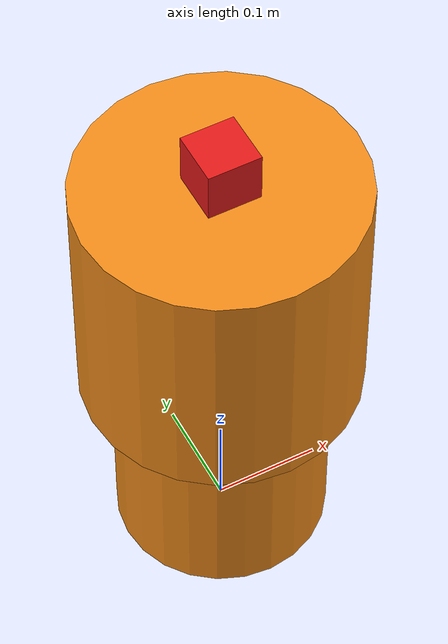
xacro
<?xml version="1.0"?>
<!-- Lander -->
<robot name="lander" xmlns:xacro="http://www.ros.org/wiki/xacro">

  <!-- Constants for robot dimensions -->
  <xacro:property name="PI" value="3.1415926535897931"/>
  <!-- Link 1 -->
  <xacro:property name="mass1" value="1" /> <!-- Link 1 -->
  <xacro:property name="length1" value="0.2" /> <!-- Link 1 -->
  <xacro:property name="radius1" value="0.1" /> <!-- Link 1 -->
  <!-- Link 2 -->
  <xacro:property name="mass2" value="1" /> <!-- Link 1 -->
  <xacro:property name="length2" value="0.25" /> <!-- Link 1 -->
  <xacro:property name="radius2" value="0.13" /> <!-- Link 1 -->
  <!-- Link laser -->
  <xacro:property name="mass_laser" value="0.1" /> <!-- Link laser -->
  <xacro:property name="length_laser" value="0.05" /> <!-- Link laser -->

  <xacro:property name="axel_offset" value="0" /> <!-- Space btw top of beam and the each joint -->
   -->

  <!-- Import all Gazebo-customization elements, including Gazebo colors -->
  <xacro:include filename="$(find lander_test)/urdf/lander.gazebo" />
  <!-- Import Rviz colors -->
  <xacro:include filename="$(find lander_test)/urdf/materials.xacro" />

  <link name="base_link"/>

  <joint name="body_joint" type="fixed">
    <parent link="base_link"/>
    <child link="link1"/>
  </joint>

  <!-- Bottom Link -->
  <link name="link1">
    <collision>
      <origin xyz="0 0 ${length1/2}" rpy="0 0 0"/>
      <geometry>
        <cylinder length="${length1}" radius="${radius1}"/>
      </geometry>
    </collision>

    <visual>
      <origin xyz="0 0 ${length1/2}" rpy="0 0 0"/>
      <geometry>
        <cylinder length="${length1}" radius="${radius1}"/>
      </geometry>
    </visual>

    <inertial>
      <origin xyz="0 0 ${length1/2}" rpy="0 0 0"/>
      <mass value="${mass1}"/>
      <inertia
	  ixx="${mass1 / 12.0 * (3*radius1*radius1 + length1*length1)}" ixy="0.0" ixz="0.0"
	  iyy="${mass1 / 12.0 * (3*radius1*radius1 + length1*length1)}" iyz="0.0"
	  izz="${mass1 / 2.0 * (radius1*radius1)}"/>
    </inertial>
  </link>

  <joint name="joint1" type="fixed">
    <parent link="link1"/>
    <child link="link2"/>
    <origin xyz="0 0 ${length1 - axel_offset}" rpy="0 0 0"/>
  </joint>

  <!-- Middle Link -->
  <link name="link2">
    <collision>
      <origin xyz="0 0 ${length2/2 - axel_offset}" rpy="0 0 0"/>
      <geometry>
        <cylinder length="${length2}" radius="${radius2}"/>
      </geometry>
    </collision>

    <visual>
      <origin xyz="0 0 ${length2/2 - axel_offset}" rpy="0 0 0"/>
      <geometry>
        <cylinder length="${length2}" radius="${radius2}"/>
      </geometry>
    </visual>

    <inertial>
      <origin xyz="0 0 ${length2/2}" rpy="0 0 0"/>
      <mass value="${mass2}"/>
      <inertia
	  ixx="${mass2 / 12.0 * (3*radius2*radius2 + length2*length2)}" ixy="0.0" ixz="0.0"
	  iyy="${mass2 / 12.0 * (3*radius2*radius2 + length2*length2)}" iyz="0.0"
	  izz="${mass2 / 2.0 * (radius2*radius2)}"/>
    </inertial>
  </link>

  <joint name="laser_joint" type="fixed">
    <parent link="link2"/>
    <child link="laser"/>
    <origin xyz="0 0 ${length2 - axel_offset + length_laser/2}" rpy="0 0 0"/>
  </joint>

  <link name="laser">
    <visual>
      <geometry>
        <box size="${length_laser} ${length_laser} ${length_laser}"/>
      </geometry>
      <material name="red">
        <color rgba="0.9 0.1 0.1 1"/>
      </material>
    </visual>
    <collision>
      <geometry>
        <box size="${length_laser} ${length_laser} ${length_laser}"/>
      </geometry>
    </collision>
  </link>

</robot>
